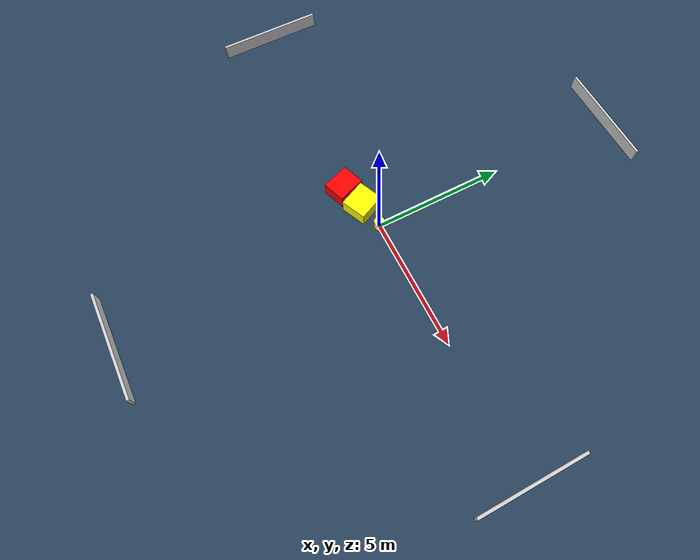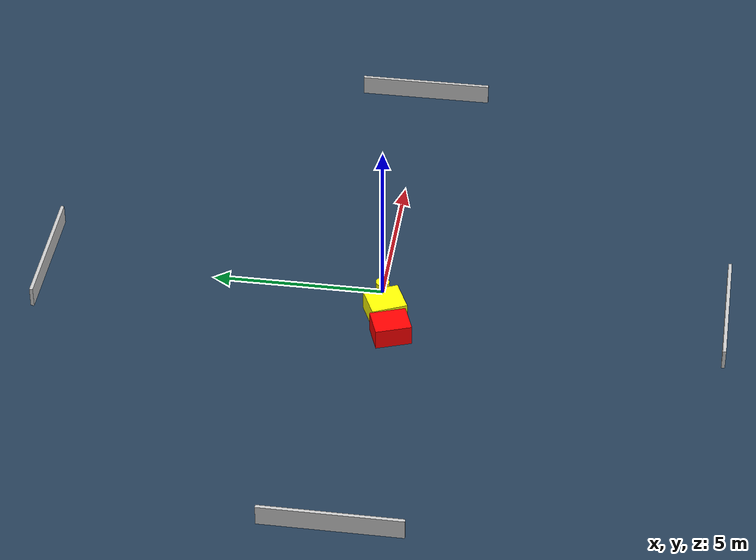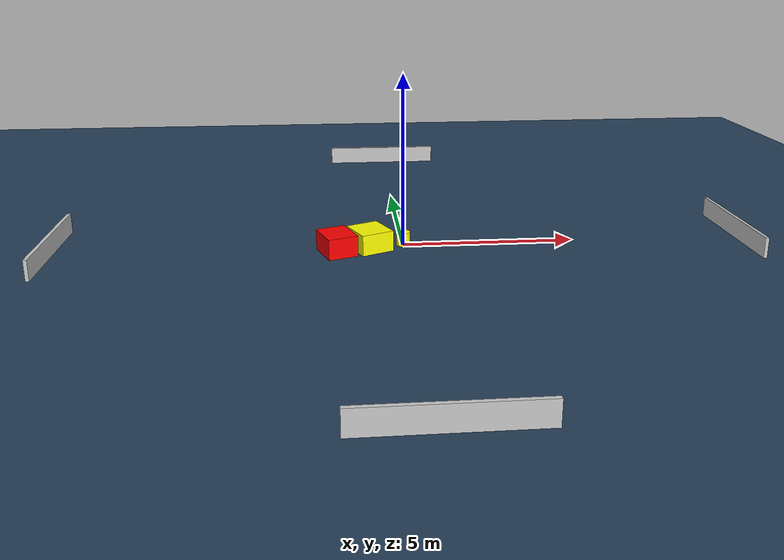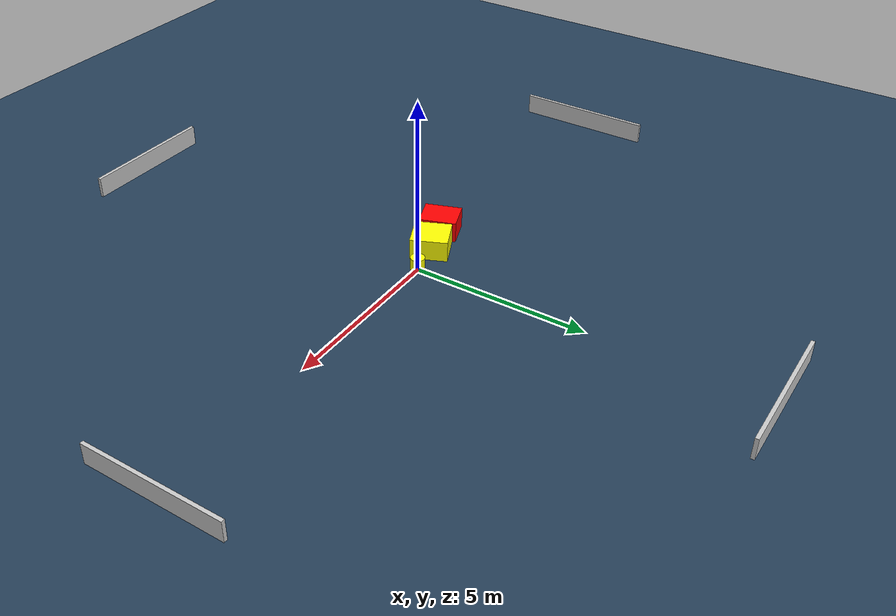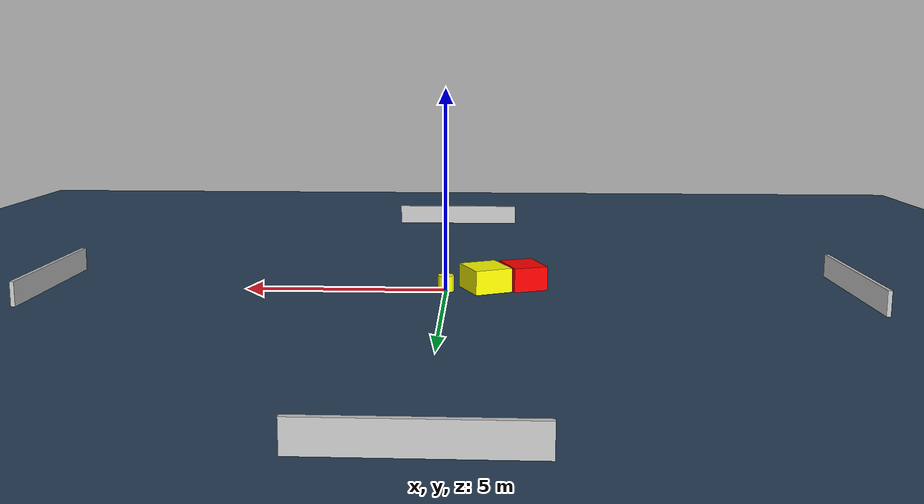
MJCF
<?xml version="1.0" ?>
<mujoco model="generated_environment">
  <option timestep="0.01" integrator="RK4" cone="elliptic"/>
  <default>
    <geom density="1"/>
  </default>
  <asset>
    <texture builtin="gradient" height="3072" name="skybox" rgb1="0.3 0.5 0.7" rgb2="0 0 0" type="skybox" width="512"/>
    <texture builtin="checker" height="300" name="groundplane" rgb1="0.2 0.3 0.4" rgb2="0.1 0.2 0.3" type="2d" width="300"/>
    <material name="groundplane" reflectance="0.2" texrepeat="5 5" texture="groundplane"/>
  </asset>
  <worldbody>
    <light dir="0 0 -1" directional="true" pos="0 0 1.5"/>
    <geom condim="3" friction="0.5 0.005 0.001" material="groundplane" name="floor" pos="0 0 0" size="0 0 0.05" type="plane"/>
    <body name="walls">
      <geom name="wall_1" condim="4" pos="-10.0 0.0 0.3" rgba="0.800000011920929 0.800000011920929 0.800000011920929 1.0" size="0.05 2.0 0.3" type="box"/>
      <geom name="wall_2" condim="4" pos="10.0 0.0 0.3" rgba="0.800000011920929 0.800000011920929 0.800000011920929 1.0" size="0.05 2.0 0.3" type="box"/>
      <geom name="wall_3" condim="4" pos="0.0 -10.0 0.3" rgba="0.800000011920929 0.800000011920929 0.800000011920929 1.0" size="2.0 0.05 0.3" type="box"/>
      <geom name="wall_4" condim="4" pos="0.0 10.0 0.3" rgba="0.800000011920929 0.800000011920929 0.800000011920929 1.0" size="2.0 0.05 0.3" type="box"/>
    </body>
    <body name="robot">
      <joint name="joint_x" type="slide" pos="0 0 0" axis="1 0 0"/>
      <joint name="joint_y" type="slide" pos="0 0 0" axis="0 1 0"/>
      <geom name="robot" type="cylinder" pos="0.0 0.0 0.2" size="0.2 0.2 0.0" mass="5.0" friction="1.0 0.005 0.0001" condim="4" rgba="1.0 1.0 0.0 1.0"/>
    </body>
    <body name="obstacle_1_movable">
      <geom name="obstacle_1_movable" condim="4" pos="-0.9847162802355652 -0.20631013353073635 0.3" euler="0 0 114.28854898694686" friction="0.0 0.005 0.001" rgba="1.0 1.0 0.0 1.0" size="0.5235769468488845 0.4877031958364095 0.3" type="box" mass="0.1"/>
      <joint type="free"/>
    </body>
    <body name="obstacle_2_static">
      <geom name="obstacle_2_static" condim="4" pos="-1.934394768892262 -0.4997861021915036 0.3" euler="0 0 109.81967164788493" friction="0.0 0.005 0.001" rgba="1.0 0.0 0.0 1.0" size="0.5279972225340244 0.43541386796530734 0.3" type="box"/>
    </body>
  </worldbody>
  <actuator>
    <motor name="actuator_x" joint="joint_x" gear="1" ctrlrange="-1 1"/>
    <motor name="actuator_y" joint="joint_y" gear="1" ctrlrange="-1 1"/>
  </actuator>
</mujoco>
